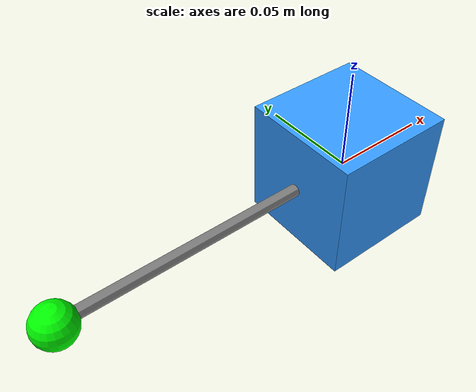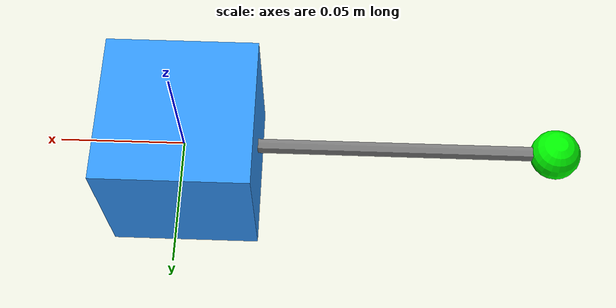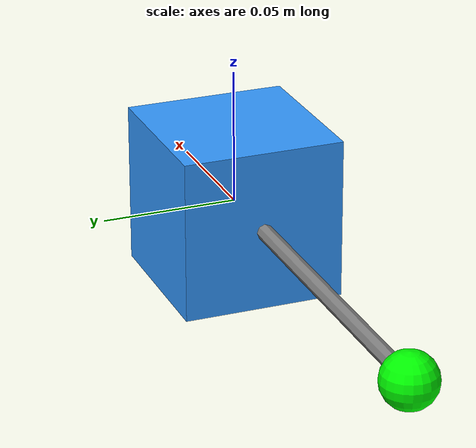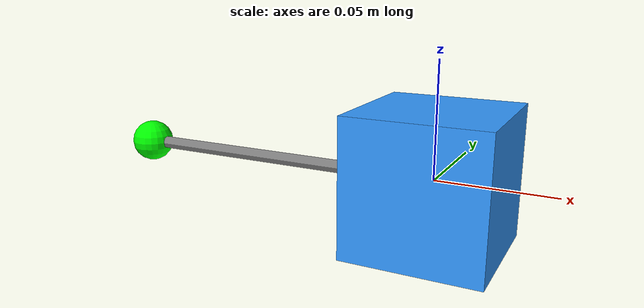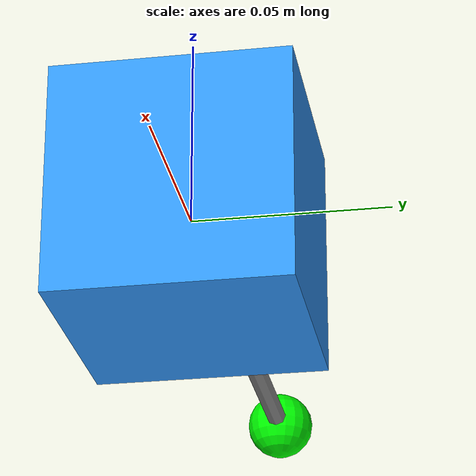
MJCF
<mujoco model="tendon_min">
  <option timestep="0.002"/>

  <worldbody>
    <body name="base" pos="0 0 0">
      <geom type="sphere" size="0.03" rgba="0.2 0.2 0.2 1"/>

      <site name="s_fixed" pos="-0.15 0 0" size="0.01" rgba="0 1 0 1"/>

      <body name="slider_body" pos="0 0 0">
        <joint name="j_slide" type="slide" axis="1 0 0" range="-0.2 0.2"/>
        <geom type="box" size="0.03 0.03 0.03" rgba="0.2 0.6 1 1"/>
        <site name="s_move" pos="0 0 0" size="0.01" rgba="1 0 0 1"/>
      </body>
    </body>
  </worldbody>

  <tendon>
    <spatial name="t1">
      <site site="s_fixed"/>
      <site site="s_move"/>
    </spatial>
  </tendon>

  <actuator>
    <motor name="m_tendon" tendon="t1" gear="1"/>
  </actuator>
</mujoco>
